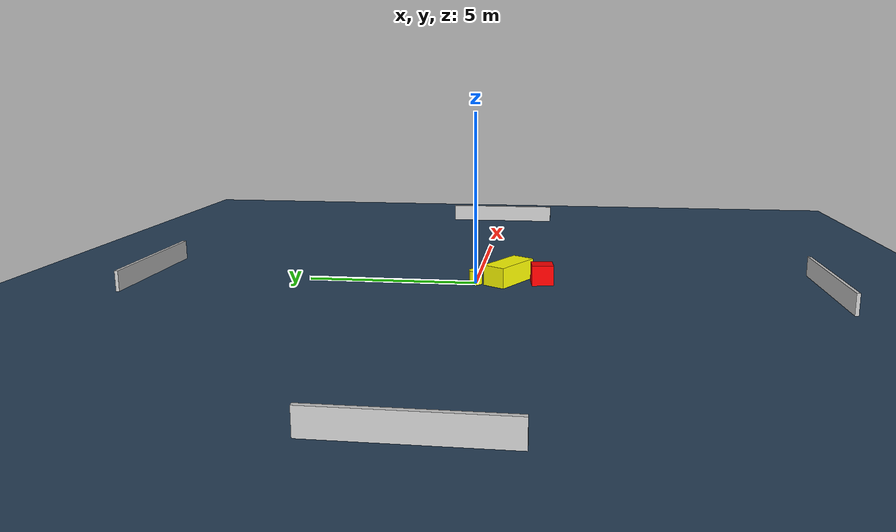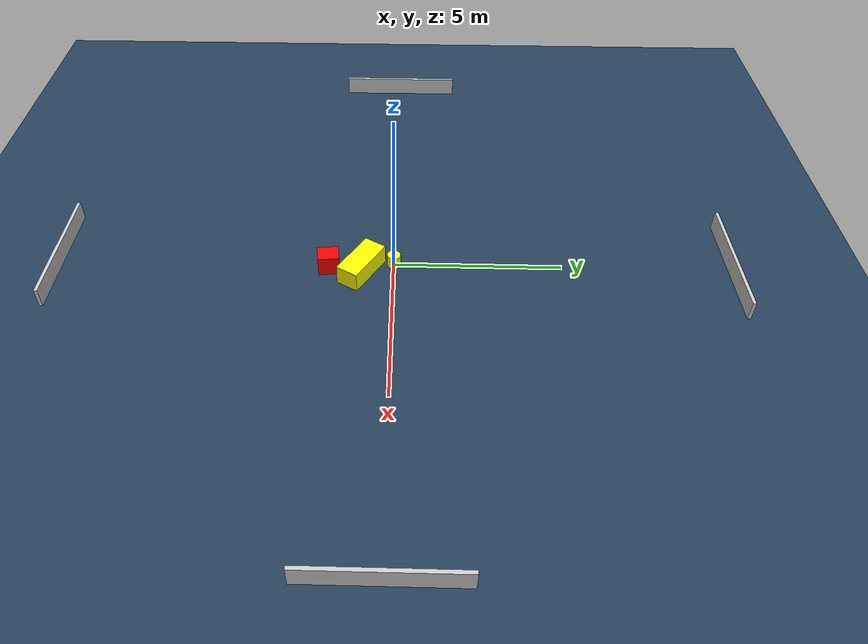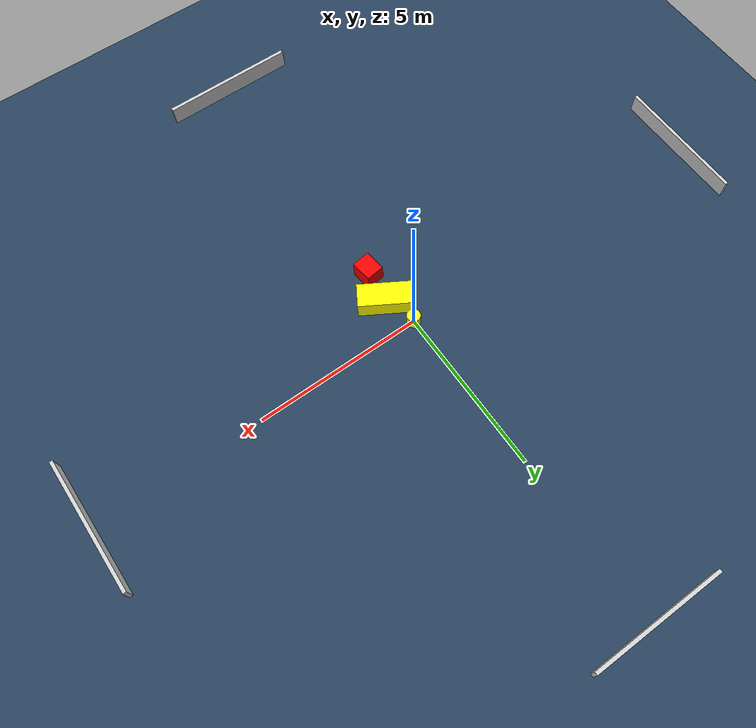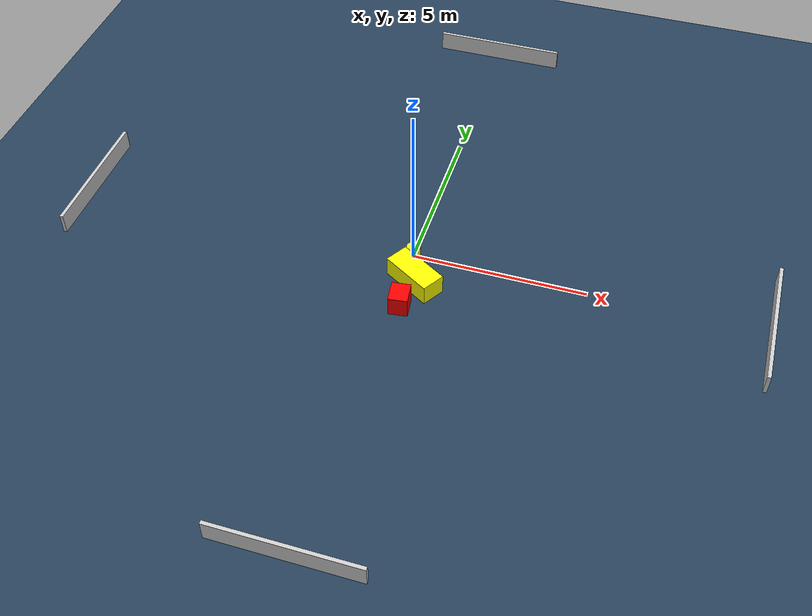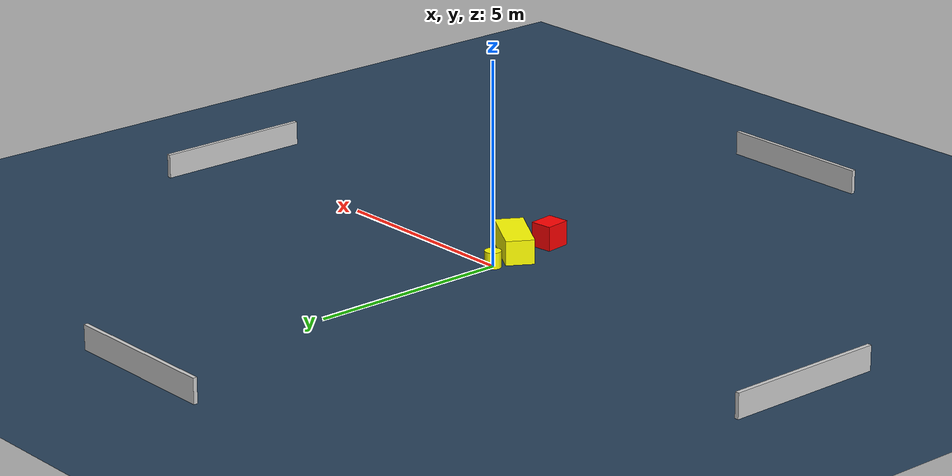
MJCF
<?xml version="1.0" ?>
<mujoco model="generated_environment">
  <option timestep="0.01" integrator="RK4" cone="elliptic"/>
  <default>
    <geom density="1"/>
  </default>
  <asset>
    <texture builtin="gradient" height="3072" name="skybox" rgb1="0.3 0.5 0.7" rgb2="0 0 0" type="skybox" width="512"/>
    <texture builtin="checker" height="300" name="groundplane" rgb1="0.2 0.3 0.4" rgb2="0.1 0.2 0.3" type="2d" width="300"/>
    <material name="groundplane" reflectance="0.2" texrepeat="5 5" texture="groundplane"/>
  </asset>
  <worldbody>
    <light dir="0 0 -1" directional="true" pos="0 0 1.5"/>
    <geom condim="3" friction="0.5 0.005 0.001" material="groundplane" name="floor" pos="0 0 0" size="0 0 0.05" type="plane"/>
    <body name="walls">
      <geom name="wall_1" condim="4" pos="-10.0 0.0 0.3" rgba="0.800000011920929 0.800000011920929 0.800000011920929 1.0" size="0.05 2.0 0.3" type="box"/>
      <geom name="wall_2" condim="4" pos="10.0 0.0 0.3" rgba="0.800000011920929 0.800000011920929 0.800000011920929 1.0" size="0.05 2.0 0.3" type="box"/>
      <geom name="wall_3" condim="4" pos="0.0 -10.0 0.3" rgba="0.800000011920929 0.800000011920929 0.800000011920929 1.0" size="2.0 0.05 0.3" type="box"/>
      <geom name="wall_4" condim="4" pos="0.0 10.0 0.3" rgba="0.800000011920929 0.800000011920929 0.800000011920929 1.0" size="2.0 0.05 0.3" type="box"/>
    </body>
    <body name="robot">
      <joint name="joint_x" type="slide" pos="0 0 0" axis="1 0 0"/>
      <joint name="joint_y" type="slide" pos="0 0 0" axis="0 1 0"/>
      <geom name="robot" type="cylinder" pos="0.0 0.0 0.2" size="0.2 0.2 0.0" mass="5.0" friction="1.0 0.005 0.0001" condim="4" rgba="1.0 1.0 0.0 1.0"/>
    </body>
    <body name="obstacle_1_movable">
      <geom name="obstacle_1_movable" condim="4" pos="0.32455545212604886 -0.9495908645599176 0.3" euler="0 0 58.83467243489699" friction="0.0 0.005 0.001" rgba="1.0 1.0 0.0 1.0" size="0.34739814667926744 0.7676187446283167 0.3" type="box" mass="0.1"/>
      <joint type="free"/>
    </body>
    <body name="obstacle_2_static">
      <geom name="obstacle_2_static" condim="4" pos="0.19682137491293555 -1.9373427448833898 0.3" euler="0 0 186.90486125248896" friction="0.0 0.005 0.001" rgba="1.0 0.0 0.0 1.0" size="0.2715952411338063 0.316015549014603 0.3" type="box"/>
    </body>
  </worldbody>
  <actuator>
    <motor name="actuator_x" joint="joint_x" gear="1" ctrlrange="-1 1"/>
    <motor name="actuator_y" joint="joint_y" gear="1" ctrlrange="-1 1"/>
  </actuator>
</mujoco>
